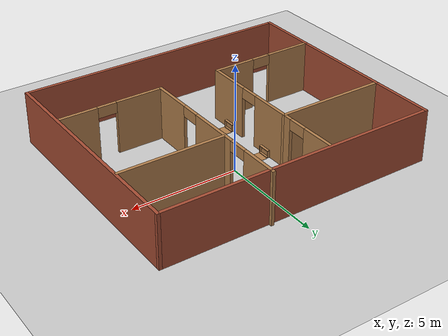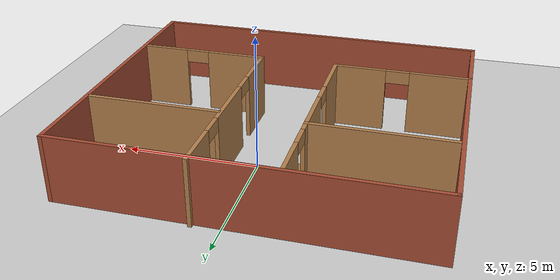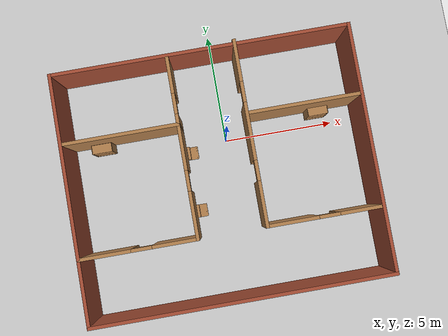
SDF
<sdf version="1.7">
 <world name="default">
  <light name="sun" type="directional">
   <pose>0 0 10 0 -0 0</pose>
   <diffuse>0.8 0.8 0.8 1</diffuse>
   <specular>0.2 0.2 0.2 1</specular>
   <attenuation>
    <range>1000</range>
    <constant>0.9</constant>
    <linear>0.01</linear>
    <quadratic>0.001</quadratic>
   </attenuation>
   <direction>-0.5 0.1 -0.9</direction>
   <spot><inner_angle>0</inner_angle><outer_angle>0</outer_angle><falloff>0</falloff></spot>
  </light>
  <model name="ground_plane">
   <static>1</static>
   <link name="link">
    <collision name="collision">
     <geometry><plane><normal>0 0 1</normal><size>100 100</size></plane></geometry>
     <surface><friction><ode><mu>100</mu><mu2>50</mu2></ode></friction></surface>
    </collision>
    <visual name="visual">
     <cast_shadows>0</cast_shadows>
     <geometry><plane><normal>0 0 1</normal><size>100 100</size></plane></geometry>
     <material>
      <script><uri>file://media/materials/scripts/gazebo.material</uri><name>Gazebo/Grey</name></script>
     </material>
    </visual>
   </link>
  </model>
  <gravity>0 0 -9.8</gravity>
  <magnetic_field>6e-06 2.3e-05 -4.2e-05</magnetic_field>
  <atmosphere type="adiabatic"/>
  <physics type="ode">
   <max_step_size>0.001</max_step_size>
   <real_time_factor>1</real_time_factor>
   <real_time_update_rate>1000</real_time_update_rate>
  </physics>
  <scene><ambient>0.4 0.4 0.4 1</ambient><background>0.7 0.7 0.7 1</background><shadows>1</shadows></scene>
  <audio><device>default</device></audio>
  <spherical_coordinates>
   <surface_model>EARTH_WGS84</surface_model>
   <latitude_deg>0</latitude_deg>
   <longitude_deg>0</longitude_deg>
   <elevation>0</elevation>
   <heading_deg>0</heading_deg>
  </spherical_coordinates>
  <model name="my_floor">
   <pose>-0.502661 -1.52839 0 0 -0 0</pose>
   <link name="Wall_0">
    <collision name="Wall_0_Collision">
     <geometry><box><size>11 0.15 2.5</size></box></geometry>
     <pose>0 0 1.25 0 -0 0</pose>
    </collision>
    <visual name="Wall_0_Visual">
     <pose>0 0 1.25 0 -0 0</pose>
     <geometry><box><size>11 0.15 2.5</size></box></geometry>
     <material>
      <script><uri>file://media/materials/scripts/gazebo.material</uri><name>Gazebo/Bricks</name></script>
      <ambient>1 1 1 1</ambient>
     </material>
     <meta><layer>0</layer></meta>
    </visual>
    <pose>-6.55 -0.065875 0 0 -0 -1.5708</pose>
   </link>
   <link name="Wall_1">
    <collision name="Wall_1_Collision">
     <geometry><box><size>13.25 0.15 2.5</size></box></geometry>
     <pose>0 0 1.25 0 -0 0</pose>
    </collision>
    <visual name="Wall_1_Visual">
     <pose>0 0 1.25 0 -0 0</pose>
     <geometry><box><size>13.25 0.15 2.5</size></box></geometry>
     <material>
      <script><uri>file://media/materials/scripts/gazebo.material</uri><name>Gazebo/Bricks</name></script>
      <ambient>1 1 1 1</ambient>
     </material>
     <meta><layer>0</layer></meta>
    </visual>
    <pose>-0 -5.49087 0 0 -0 0</pose>
   </link>
   <link name="Wall_15">
    <pose>-3.9966 -2.62219 0 0 -0 0</pose>
    <visual name="Wall_15_Visual_0">
     <pose>-1.46919 0 1.25 0 -0 0</pose>
     <geometry><box><size>2.31162 0.15 2.5</size></box></geometry>
     <material>
      <script><uri>file://media/materials/scripts/gazebo.material</uri><name>Gazebo/Wood</name></script>
      <ambient>1 1 1 1</ambient>
     </material>
     <meta><layer>0</layer></meta>
    </visual>
    <collision name="Wall_15_Collision_0">
     <geometry><box><size>2.31162 0.15 2.5</size></box></geometry>
     <pose>-1.46919 0 1.25 0 -0 0</pose>
    </collision>
    <visual name="Wall_15_Visual_1">
     <pose>1.60581 0 1.25 0 -0 0</pose>
     <geometry><box><size>2.03838 0.15 2.5</size></box></geometry>
     <material>
      <script><uri>file://media/materials/scripts/gazebo.material</uri><name>Gazebo/Wood</name></script>
      <ambient>1 1 1 1</ambient>
     </material>
     <meta><layer>0</layer></meta>
    </visual>
    <collision name="Wall_15_Collision_1">
     <geometry><box><size>2.03838 0.15 2.5</size></box></geometry>
     <pose>1.60581 0 1.25 0 -0 0</pose>
    </collision>
    <visual name="Wall_15_Visual_2">
     <pose>0.13662 0 2.25 0 -0 0</pose>
     <geometry><box><size>0.9 0.15 0.5</size></box></geometry>
     <material>
      <script><uri>file://media/materials/scripts/gazebo.material</uri><name>Gazebo/Wood</name></script>
      <ambient>1 1 1 1</ambient>
     </material>
     <meta><layer>0</layer></meta>
    </visual>
    <collision name="Wall_15_Collision_2">
     <geometry><box><size>0.9 0.15 0.5</size></box></geometry>
     <pose>0.13662 0 2.25 0 -0 0</pose>
    </collision>
   </link>
   <link name="Wall_16">
    <pose>-1.4466 1.30281 0 0 -0 1.5708</pose>
    <visual name="Wall_16_Visual_0">
     <pose>-2.93729 0 1.25 0 -0 0</pose>
     <geometry><box><size>2.12542 0.15 2.5</size></box></geometry>
     <material>
      <script><uri>file://media/materials/scripts/gazebo.material</uri><name>Gazebo/Wood</name></script>
      <ambient>1 1 1 1</ambient>
     </material>
     <meta><layer>0</layer></meta>
    </visual>
    <collision name="Wall_16_Collision_0">
     <geometry><box><size>2.12542 0.15 2.5</size></box></geometry>
     <pose>-2.93729 0 1.25 0 -0 0</pose>
    </collision>
    <visual name="Wall_16_Visual_1">
     <pose>0.251231 0 1.25 0 -0 0</pose>
     <geometry><box><size>2.45162 0.15 2.5</size></box></geometry>
     <material>
      <script><uri>file://media/materials/scripts/gazebo.material</uri><name>Gazebo/Wood</name></script>
      <ambient>1 1 1 1</ambient>
     </material>
     <meta><layer>0</layer></meta>
    </visual>
    <collision name="Wall_16_Collision_1">
     <geometry><box><size>2.45162 0.15 2.5</size></box></geometry>
     <pose>0.251231 0 1.25 0 -0 0</pose>
    </collision>
    <visual name="Wall_16_Visual_2">
     <pose>3.18852 0 1.25 0 -0 0</pose>
     <geometry><box><size>1.62296 0.15 2.5</size></box></geometry>
     <material>
      <script><uri>file://media/materials/scripts/gazebo.material</uri><name>Gazebo/Wood</name></script>
      <ambient>1 1 1 1</ambient>
     </material>
     <meta><layer>0</layer></meta>
    </visual>
    <collision name="Wall_16_Collision_2">
     <geometry><box><size>1.62296 0.15 2.5</size></box></geometry>
     <pose>3.18852 0 1.25 0 -0 0</pose>
    </collision>
    <visual name="Wall_16_Visual_3">
     <pose>-1.42458 0 2.25 0 -0 0</pose>
     <geometry><box><size>0.9 0.15 0.5</size></box></geometry>
     <material>
      <script><uri>file://media/materials/scripts/gazebo.material</uri><name>Gazebo/Wood</name></script>
      <ambient>1 1 1 1</ambient>
     </material>
     <meta><layer>0</layer></meta>
    </visual>
    <collision name="Wall_16_Collision_3">
     <geometry><box><size>0.9 0.15 0.5</size></box></geometry>
     <pose>-1.42458 0 2.25 0 -0 0</pose>
    </collision>
    <visual name="Wall_16_Visual_4">
     <pose>1.92704 0 2.25 0 -0 0</pose>
     <geometry><box><size>0.9 0.15 0.5</size></box></geometry>
     <material>
      <script><uri>file://media/materials/scripts/gazebo.material</uri><name>Gazebo/Wood</name></script>
      <ambient>1 1 1 1</ambient>
     </material>
     <meta><layer>0</layer></meta>
    </visual>
    <collision name="Wall_16_Collision_4">
     <geometry><box><size>0.9 0.15 0.5</size></box></geometry>
     <pose>1.92704 0 2.25 0 -0 0</pose>
    </collision>
   </link>
   <link name="Wall_18">
    <collision name="Wall_18_Collision">
     <geometry><box><size>5.25 0.15 2.5</size></box></geometry>
     <pose>0 0 1.25 0 -0 0</pose>
    </collision>
    <visual name="Wall_18_Visual">
     <pose>0 0 1.25 0 -0 0</pose>
     <geometry><box><size>5.25 0.15 2.5</size></box></geometry>
     <material>
      <script><uri>file://media/materials/scripts/gazebo.material</uri><name>Gazebo/Wood</name></script>
      <ambient>1 1 1 1</ambient>
     </material>
     <meta><layer>0</layer></meta>
    </visual>
    <pose>-3.9966 2.32545 0 0 -0 0</pose>
   </link>
   <link name="Wall_2">
    <collision name="Wall_2_Collision">
     <geometry><box><size>11 0.15 2.5</size></box></geometry>
     <pose>0 0 1.25 0 -0 0</pose>
    </collision>
    <visual name="Wall_2_Visual">
     <pose>0 0 1.25 0 -0 0</pose>
     <geometry><box><size>11 0.15 2.5</size></box></geometry>
     <material>
      <script><uri>file://media/materials/scripts/gazebo.material</uri><name>Gazebo/Bricks</name></script>
      <ambient>1 1 1 1</ambient>
     </material>
     <meta><layer>0</layer></meta>
    </visual>
    <pose>6.55 -0.065875 0 0 -0 1.5708</pose>
   </link>
   <link name="Wall_22">
    <pose>1.53986 1.44087 0 0 -0 -1.5708</pose>
    <visual name="Wall_22_Visual_0">
     <pose>-3.18199 0 1.25 0 -0 0</pose>
     <geometry><box><size>1.88602 0.15 2.5</size></box></geometry>
     <material>
      <script><uri>file://media/materials/scripts/gazebo.material</uri><name>Gazebo/Wood</name></script>
      <ambient>1 1 1 1</ambient>
     </material>
     <meta><layer>0</layer></meta>
    </visual>
    <collision name="Wall_22_Collision_0">
     <geometry><box><size>1.88602 0.15 2.5</size></box></geometry>
     <pose>-3.18199 0 1.25 0 -0 0</pose>
    </collision>
    <visual name="Wall_22_Visual_1">
     <pose>-0.07327 0 1.25 0 -0 0</pose>
     <geometry><box><size>2.53143 0.15 2.5</size></box></geometry>
     <material>
      <script><uri>file://media/materials/scripts/gazebo.material</uri><name>Gazebo/Wood</name></script>
      <ambient>1 1 1 1</ambient>
     </material>
     <meta><layer>0</layer></meta>
    </visual>
    <collision name="Wall_22_Collision_1">
     <geometry><box><size>2.53143 0.15 2.5</size></box></geometry>
     <pose>-0.07327 0 1.25 0 -0 0</pose>
    </collision>
    <visual name="Wall_22_Visual_2">
     <pose>3.10872 0 1.25 0 -0 0</pose>
     <geometry><box><size>2.03256 0.15 2.5</size></box></geometry>
     <material>
      <script><uri>file://media/materials/scripts/gazebo.material</uri><name>Gazebo/Wood</name></script>
      <ambient>1 1 1 1</ambient>
     </material>
     <meta><layer>0</layer></meta>
    </visual>
    <collision name="Wall_22_Collision_2">
     <geometry><box><size>2.03256 0.15 2.5</size></box></geometry>
     <pose>3.10872 0 1.25 0 -0 0</pose>
    </collision>
    <visual name="Wall_22_Visual_3">
     <pose>-1.78898 0 2.25 0 -0 0</pose>
     <geometry><box><size>0.9 0.15 0.5</size></box></geometry>
     <material>
      <script><uri>file://media/materials/scripts/gazebo.material</uri><name>Gazebo/Wood</name></script>
      <ambient>1 1 1 1</ambient>
     </material>
     <meta><layer>0</layer></meta>
    </visual>
    <collision name="Wall_22_Collision_3">
     <geometry><box><size>0.9 0.15 0.5</size></box></geometry>
     <pose>-1.78898 0 2.25 0 -0 0</pose>
    </collision>
    <visual name="Wall_22_Visual_4">
     <pose>1.64244 0 2.25 0 -0 0</pose>
     <geometry><box><size>0.9 0.15 0.5</size></box></geometry>
     <material>
      <script><uri>file://media/materials/scripts/gazebo.material</uri><name>Gazebo/Wood</name></script>
      <ambient>1 1 1 1</ambient>
     </material>
     <meta><layer>0</layer></meta>
    </visual>
    <collision name="Wall_22_Collision_4">
     <geometry><box><size>0.9 0.15 0.5</size></box></geometry>
     <pose>1.64244 0 2.25 0 -0 0</pose>
    </collision>
   </link>
   <link name="Wall_23">
    <pose>3.96486 -2.60913 0 0 -0 0</pose>
    <visual name="Wall_23_Visual_0">
     <pose>-1.34419 0 1.25 0 -0 0</pose>
     <geometry><box><size>2.31162 0.15 2.5</size></box></geometry>
     <material>
      <script><uri>file://media/materials/scripts/gazebo.material</uri><name>Gazebo/Wood</name></script>
      <ambient>1 1 1 1</ambient>
     </material>
     <meta><layer>0</layer></meta>
    </visual>
    <collision name="Wall_23_Collision_0">
     <geometry><box><size>2.31162 0.15 2.5</size></box></geometry>
     <pose>-1.34419 0 1.25 0 -0 0</pose>
    </collision>
    <visual name="Wall_23_Visual_1">
     <pose>1.60581 0 1.25 0 -0 0</pose>
     <geometry><box><size>1.78838 0.15 2.5</size></box></geometry>
     <material>
      <script><uri>file://media/materials/scripts/gazebo.material</uri><name>Gazebo/Wood</name></script>
      <ambient>1 1 1 1</ambient>
     </material>
     <meta><layer>0</layer></meta>
    </visual>
    <collision name="Wall_23_Collision_1">
     <geometry><box><size>1.78838 0.15 2.5</size></box></geometry>
     <pose>1.60581 0 1.25 0 -0 0</pose>
    </collision>
    <visual name="Wall_23_Visual_2">
     <pose>0.26162 0 2.25 0 -0 0</pose>
     <geometry><box><size>0.9 0.15 0.5</size></box></geometry>
     <material>
      <script><uri>file://media/materials/scripts/gazebo.material</uri><name>Gazebo/Wood</name></script>
      <ambient>1 1 1 1</ambient>
     </material>
     <meta><layer>0</layer></meta>
    </visual>
    <collision name="Wall_23_Collision_2">
     <geometry><box><size>0.9 0.15 0.5</size></box></geometry>
     <pose>0.26162 0 2.25 0 -0 0</pose>
    </collision>
   </link>
   <link name="Wall_25">
    <collision name="Wall_25_Collision">
     <geometry><box><size>5 0.15 2.5</size></box></geometry>
     <pose>0 0 1.25 0 -0 0</pose>
    </collision>
    <visual name="Wall_25_Visual">
     <pose>0 0 1.25 0 -0 0</pose>
     <geometry><box><size>5 0.15 2.5</size></box></geometry>
     <material>
      <script><uri>file://media/materials/scripts/gazebo.material</uri><name>Gazebo/Wood</name></script>
      <ambient>1 1 1 1</ambient>
     </material>
     <meta><layer>0</layer></meta>
    </visual>
    <pose>4.04466 2.29885 0 0 -0 0</pose>
   </link>
   <link name="Wall_3">
    <collision name="Wall_3_Collision">
     <geometry><box><size>13.25 0.15 2.5</size></box></geometry>
     <pose>0 0 1.25 0 -0 0</pose>
    </collision>
    <visual name="Wall_3_Visual">
     <pose>0 0 1.25 0 -0 0</pose>
     <geometry><box><size>13.25 0.15 2.5</size></box></geometry>
     <material>
      <script><uri>file://media/materials/scripts/gazebo.material</uri><name>Gazebo/Bricks</name></script>
      <ambient>1 1 1 1</ambient>
     </material>
     <meta><layer>0</layer></meta>
    </visual>
    <pose>-0 5.35912 0 0 -0 3.14159</pose>
   </link>
   <static>1</static>
  </model>
  <model name="bookshelf">
   <static>1</static>
   <link name="link">
    <inertial><mass>1</mass></inertial>
    <collision name="back">
     <pose>0 0.005 0.6 0 -0 0</pose>
     <geometry><box><size>0.9 0.01 1.2</size></box></geometry>
    </collision>
    <visual name="visual1">
     <pose>0 0.005 0.6 0 -0 0</pose>
     <geometry><box><size>0.9 0.01 1.2</size></box></geometry>
     <material>
      <script><uri>file://media/materials/scripts/gazebo.material</uri><name>Gazebo/Wood</name></script>
     </material>
    </visual>
    <collision name="left_side">
     <pose>0.45 -0.195 0.6 0 -0 0</pose>
     <geometry><box><size>0.02 0.4 1.2</size></box></geometry>
    </collision>
    <visual name="visual2">
     <pose>0.45 -0.195 0.6 0 -0 0</pose>
     <geometry><box><size>0.02 0.4 1.2</size></box></geometry>
     <material>
      <script><uri>file://media/materials/scripts/gazebo.material</uri><name>Gazebo/Wood</name></script>
     </material>
    </visual>
    <collision name="right_side">
     <pose>-0.45 -0.195 0.6 0 -0 0</pose>
     <geometry><box><size>0.02 0.4 1.2</size></box></geometry>
    </collision>
    <visual name="visual3">
     <pose>-0.45 -0.195 0.6 0 -0 0</pose>
     <geometry><box><size>0.02 0.4 1.2</size></box></geometry>
     <material>
      <script><uri>file://media/materials/scripts/gazebo.material</uri><name>Gazebo/Wood</name></script>
     </material>
    </visual>
    <collision name="bottom">
     <pose>0 -0.195 0.03 0 -0 0</pose>
     <geometry><box><size>0.88 0.4 0.06</size></box></geometry>
    </collision>
    <visual name="visual4">
     <pose>0 -0.195 0.03 0 -0 0</pose>
     <geometry><box><size>0.88 0.4 0.06</size></box></geometry>
     <material>
      <script><uri>file://media/materials/scripts/gazebo.material</uri><name>Gazebo/Wood</name></script>
     </material>
    </visual>
    <collision name="top">
     <pose>0 -0.195 1.19 0 -0 0</pose>
     <geometry><box><size>0.88 0.4 0.02</size></box></geometry>
    </collision>
    <visual name="visual5">
     <pose>0 -0.195 1.19 0 -0 0</pose>
     <geometry><box><size>0.88 0.4 0.02</size></box></geometry>
     <material>
      <script><uri>file://media/materials/scripts/gazebo.material</uri><name>Gazebo/Wood</name></script>
     </material>
    </visual>
    <collision name="low_shelf">
     <pose>0 -0.195 0.43 0 -0 0</pose>
     <geometry><box><size>0.88 0.4 0.02</size></box></geometry>
    </collision>
    <visual name="visual6">
     <pose>0 -0.195 0.43 0 -0 0</pose>
     <geometry><box><size>0.88 0.4 0.02</size></box></geometry>
     <material>
      <script><uri>file://media/materials/scripts/gazebo.material</uri><name>Gazebo/Wood</name></script>
     </material>
    </visual>
    <collision name="high_shelf">
     <pose>0 -0.195 0.8 0 -0 0</pose>
     <geometry><box><size>0.88 0.4 0.02</size></box></geometry>
    </collision>
    <visual name="visual7">
     <pose>0 -0.195 0.8 0 -0 0</pose>
     <geometry><box><size>0.88 0.4 0.02</size></box></geometry>
     <material>
      <script><uri>file://media/materials/scripts/gazebo.material</uri><name>Gazebo/Wood</name></script>
     </material>
    </visual>
   </link>
   <pose>4.28312 0.725131 0 0 -0 0</pose>
  </model>
  <model name="bookshelf_0">
   <static>1</static>
   <link name="link">
    <inertial><mass>1</mass></inertial>
    <collision name="back">
     <pose>0 0.005 0.6 0 -0 0</pose>
     <geometry><box><size>0.9 0.01 1.2</size></box></geometry>
    </collision>
    <visual name="visual1">
     <pose>0 0.005 0.6 0 -0 0</pose>
     <geometry><box><size>0.9 0.01 1.2</size></box></geometry>
     <material>
      <script><uri>file://media/materials/scripts/gazebo.material</uri><name>Gazebo/Wood</name></script>
     </material>
    </visual>
    <collision name="left_side">
     <pose>0.45 -0.195 0.6 0 -0 0</pose>
     <geometry><box><size>0.02 0.4 1.2</size></box></geometry>
    </collision>
    <visual name="visual2">
     <pose>0.45 -0.195 0.6 0 -0 0</pose>
     <geometry><box><size>0.02 0.4 1.2</size></box></geometry>
     <material>
      <script><uri>file://media/materials/scripts/gazebo.material</uri><name>Gazebo/Wood</name></script>
     </material>
    </visual>
    <collision name="right_side">
     <pose>-0.45 -0.195 0.6 0 -0 0</pose>
     <geometry><box><size>0.02 0.4 1.2</size></box></geometry>
    </collision>
    <visual name="visual3">
     <pose>-0.45 -0.195 0.6 0 -0 0</pose>
     <geometry><box><size>0.02 0.4 1.2</size></box></geometry>
     <material>
      <script><uri>file://media/materials/scripts/gazebo.material</uri><name>Gazebo/Wood</name></script>
     </material>
    </visual>
    <collision name="bottom">
     <pose>0 -0.195 0.03 0 -0 0</pose>
     <geometry><box><size>0.88 0.4 0.06</size></box></geometry>
    </collision>
    <visual name="visual4">
     <pose>0 -0.195 0.03 0 -0 0</pose>
     <geometry><box><size>0.88 0.4 0.06</size></box></geometry>
     <material>
      <script><uri>file://media/materials/scripts/gazebo.material</uri><name>Gazebo/Wood</name></script>
     </material>
    </visual>
    <collision name="top">
     <pose>0 -0.195 1.19 0 -0 0</pose>
     <geometry><box><size>0.88 0.4 0.02</size></box></geometry>
    </collision>
    <visual name="visual5">
     <pose>0 -0.195 1.19 0 -0 0</pose>
     <geometry><box><size>0.88 0.4 0.02</size></box></geometry>
     <material>
      <script><uri>file://media/materials/scripts/gazebo.material</uri><name>Gazebo/Wood</name></script>
     </material>
    </visual>
    <collision name="low_shelf">
     <pose>0 -0.195 0.43 0 -0 0</pose>
     <geometry><box><size>0.88 0.4 0.02</size></box></geometry>
    </collision>
    <visual name="visual6">
     <pose>0 -0.195 0.43 0 -0 0</pose>
     <geometry><box><size>0.88 0.4 0.02</size></box></geometry>
     <material>
      <script><uri>file://media/materials/scripts/gazebo.material</uri><name>Gazebo/Wood</name></script>
     </material>
    </visual>
    <collision name="high_shelf">
     <pose>0 -0.195 0.8 0 -0 0</pose>
     <geometry><box><size>0.88 0.4 0.02</size></box></geometry>
    </collision>
    <visual name="visual7">
     <pose>0 -0.195 0.8 0 -0 0</pose>
     <geometry><box><size>0.88 0.4 0.02</size></box></geometry>
     <material>
      <script><uri>file://media/materials/scripts/gazebo.material</uri><name>Gazebo/Wood</name></script>
     </material>
    </visual>
   </link>
   <pose>-5.57249 0.7058 0 0 -0 0</pose>
  </model>
  <model name="wooden_case">
   <link name="base">
    <pose>0 0 0.024 0 -0 0</pose>
    <inertial>
     <pose>-0.022184 0 0.171592 0 -0 0</pose>
     <mass>3.96264</mass>
     <inertia>
      <ixx>0.213536</ixx>
      <ixy>0</ixy>
      <ixz>0.000779377</ixz>
      <iyy>0.0708943</iyy>
      <iyz>0</iyz>
      <izz>0.154604</izz>
     </inertia>
    </inertial>
    <collision name="collision_back">
     <pose>-0.053975 0 0.1778 0 -0 0</pose>
     <geometry><box><size>0.01905 0.5461 0.3175</size></box></geometry>
     <surface>
      <contact>
       <poissons_ratio>0.347</poissons_ratio>
       <elastic_modulus>8.8e+09</elastic_modulus>
       <ode><kp>100000</kp><kd>100</kd><max_vel>100</max_vel><min_depth>0.001</min_depth></ode>
      </contact>
      <friction>
       <torsional>
        <coefficient>1</coefficient>
        <use_patch_radius>0</use_patch_radius>
        <surface_radius>0.01</surface_radius>
       </torsional>
      </friction>
     </surface>
    </collision>
    <visual name="visual_back">
     <pose>-0.053975 0 0.1778 0 -0 0</pose>
     <geometry><box><size>0.01905 0.5461 0.3175</size></box></geometry>
     <material>
      <script><uri>file://media/materials/scripts/gazebo.material</uri><name>Gazebo/Wood</name></script>
     </material>
    </visual>
    <collision name="collision_bottom">
     <pose>0 0 0.009525 0 -0 0</pose>
     <geometry><box><size>0.127 0.5842 0.01905</size></box></geometry>
     <surface>
      <contact>
       <poissons_ratio>0.347</poissons_ratio>
       <elastic_modulus>8.8e+09</elastic_modulus>
       <ode><kp>100000</kp><kd>100</kd><max_vel>100</max_vel><min_depth>0.001</min_depth></ode>
      </contact>
      <friction>
       <torsional>
        <coefficient>1</coefficient>
        <use_patch_radius>0</use_patch_radius>
        <surface_radius>0.01</surface_radius>
       </torsional>
      </friction>
     </surface>
    </collision>
    <visual name="visual_bottom">
     <pose>0 0 0.009525 0 -0 0</pose>
     <geometry><box><size>0.127 0.5842 0.01905</size></box></geometry>
     <material>
      <script><uri>file://media/materials/scripts/gazebo.material</uri><name>Gazebo/Wood</name></script>
     </material>
    </visual>
    <collision name="collision_top">
     <pose>0 0 0.346075 0 -0 0</pose>
     <geometry><box><size>0.127 0.5842 0.01905</size></box></geometry>
     <surface>
      <contact>
       <poissons_ratio>0.347</poissons_ratio>
       <elastic_modulus>8.8e+09</elastic_modulus>
       <ode><kp>100000</kp><kd>100</kd><max_vel>100</max_vel><min_depth>0.001</min_depth></ode>
      </contact>
      <friction>
       <torsional>
        <coefficient>1</coefficient>
        <use_patch_radius>0</use_patch_radius>
        <surface_radius>0.01</surface_radius>
       </torsional>
      </friction>
     </surface>
    </collision>
    <visual name="visual_top">
     <pose>0 0 0.346075 0 -0 0</pose>
     <geometry><box><size>0.127 0.5842 0.01905</size></box></geometry>
     <material>
      <script><uri>file://media/materials/scripts/gazebo.material</uri><name>Gazebo/Wood</name></script>
     </material>
    </visual>
    <collision name="collision_left">
     <pose>0 -0.282575 0.1778 0 -0 0</pose>
     <geometry><box><size>0.127 0.01905 0.3175</size></box></geometry>
     <surface>
      <contact>
       <poissons_ratio>0.347</poissons_ratio>
       <elastic_modulus>8.8e+09</elastic_modulus>
       <ode><kp>100000</kp><kd>100</kd><max_vel>100</max_vel><min_depth>0.001</min_depth></ode>
      </contact>
      <friction>
       <torsional>
        <coefficient>1</coefficient>
        <use_patch_radius>0</use_patch_radius>
        <surface_radius>0.01</surface_radius>
       </torsional>
      </friction>
     </surface>
    </collision>
    <visual name="visual_left">
     <pose>0 -0.282575 0.1778 0 -0 0</pose>
     <geometry><box><size>0.127 0.01905 0.3175</size></box></geometry>
     <material>
      <script><uri>file://media/materials/scripts/gazebo.material</uri><name>Gazebo/Wood</name></script>
     </material>
    </visual>
    <collision name="collision_right">
     <pose>0 0.282575 0.1778 0 -0 0</pose>
     <geometry><box><size>0.127 0.01905 0.3175</size></box></geometry>
     <surface>
      <contact>
       <poissons_ratio>0.347</poissons_ratio>
       <elastic_modulus>8.8e+09</elastic_modulus>
       <ode><kp>100000</kp><kd>100</kd><max_vel>100</max_vel><min_depth>0.001</min_depth></ode>
      </contact>
      <friction>
       <torsional>
        <coefficient>1</coefficient>
        <use_patch_radius>0</use_patch_radius>
        <surface_radius>0.01</surface_radius>
       </torsional>
      </friction>
     </surface>
    </collision>
    <visual name="visual_right">
     <pose>0 0.282575 0.1778 0 -0 0</pose>
     <geometry><box><size>0.127 0.01905 0.3175</size></box></geometry>
     <material>
      <script><uri>file://media/materials/scripts/gazebo.material</uri><name>Gazebo/Wood</name></script>
     </material>
    </visual>
    <collision name="collision_block_left">
     <pose>0.0095 -0.2151 -0.012 0 -0 0</pose>
     <geometry><box><size>0.108 0.05 0.024</size></box></geometry>
     <surface>
      <contact>
       <poissons_ratio>0.347</poissons_ratio>
       <elastic_modulus>8.8e+09</elastic_modulus>
       <ode><kp>100000</kp><kd>100</kd><max_vel>100</max_vel><min_depth>0.001</min_depth></ode>
      </contact>
      <friction>
       <torsional>
        <coefficient>1</coefficient>
        <use_patch_radius>0</use_patch_radius>
        <surface_radius>0.01</surface_radius>
       </torsional>
      </friction>
     </surface>
    </collision>
    <visual name="visual_block_left">
     <pose>0.0095 -0.2151 -0.012 0 -0 0</pose>
     <geometry><box><size>0.108 0.05 0.024</size></box></geometry>
     <material>
      <script><uri>file://media/materials/scripts/gazebo.material</uri><name>Gazebo/Wood</name></script>
     </material>
    </visual>
    <collision name="collision_block_right">
     <pose>0.0095 0.2151 -0.012 0 -0 0</pose>
     <geometry><box><size>0.108 0.05 0.024</size></box></geometry>
     <surface>
      <contact>
       <poissons_ratio>0.347</poissons_ratio>
       <elastic_modulus>8.8e+09</elastic_modulus>
       <ode><kp>100000</kp><kd>100</kd><max_vel>100</max_vel><min_depth>0.001</min_depth></ode>
      </contact>
      <friction>
       <torsional>
        <coefficient>1</coefficient>
        <use_patch_radius>0</use_patch_radius>
        <surface_radius>0.01</surface_radius>
       </torsional>
      </friction>
     </surface>
    </collision>
    <visual name="visual_block_right">
     <pose>0.0095 0.2151 -0.012 0 -0 0</pose>
     <geometry><box><size>0.108 0.05 0.024</size></box></geometry>
     <material>
      <script><uri>file://media/materials/scripts/gazebo.material</uri><name>Gazebo/Wood</name></script>
     </material>
    </visual>
   </link>
   <link name="lid">
    <pose>0.243775 0 0.009525 0 -0 0</pose>
    <inertial>
     <mass>1.97874</mass>
     <inertia>
      <ixx>0.0563367</ixx>
      <ixy>0</ixy>
      <ixz>0</ixz>
      <iyy>0.020911</iyy>
      <iyz>0</iyz>
      <izz>0.0771281</izz>
     </inertia>
    </inertial>
    <collision name="collision">
     <geometry><box><size>0.3556 0.5842 0.01905</size></box></geometry>
     <surface>
      <contact>
       <poissons_ratio>0.347</poissons_ratio>
       <elastic_modulus>8.8e+09</elastic_modulus>
       <ode><kp>100000</kp><kd>100</kd><max_vel>100</max_vel><min_depth>0.001</min_depth></ode>
      </contact>
      <friction>
       <torsional>
        <coefficient>1</coefficient>
        <use_patch_radius>0</use_patch_radius>
        <surface_radius>0.01</surface_radius>
       </torsional>
      </friction>
     </surface>
    </collision>
    <visual name="visual">
     <geometry><box><size>0.3556 0.5842 0.01905</size></box></geometry>
     <material>
      <script><uri>file://media/materials/scripts/gazebo.material</uri><name>Gazebo/Wood</name></script>
     </material>
    </visual>
    <visual name="tee_nut_1">
     <pose>0.122 -0.216 0 0 -0 0</pose>
     <geometry><cylinder><radius>0.00635</radius><length>0.0192405</length></cylinder></geometry>
     <material>
      <script><uri>file://media/materials/scripts/gazebo.material</uri><name>Gazebo/Grey</name></script>
     </material>
    </visual>
    <visual name="tee_nut_2">
     <pose>0.122 -0.088 0 0 -0 0</pose>
     <geometry><cylinder><radius>0.00635</radius><length>0.0192405</length></cylinder></geometry>
     <material>
      <script><uri>file://media/materials/scripts/gazebo.material</uri><name>Gazebo/Grey</name></script>
     </material>
    </visual>
    <visual name="tee_nut_3">
     <pose>0.122 0.088 0 0 -0 0</pose>
     <geometry><cylinder><radius>0.00635</radius><length>0.0192405</length></cylinder></geometry>
     <material>
      <script><uri>file://media/materials/scripts/gazebo.material</uri><name>Gazebo/Grey</name></script>
     </material>
    </visual>
    <visual name="tee_nut_4">
     <pose>0.122 0.216 0 0 -0 0</pose>
     <geometry><cylinder><radius>0.00635</radius><length>0.0192405</length></cylinder></geometry>
     <material>
      <script><uri>file://media/materials/scripts/gazebo.material</uri><name>Gazebo/Grey</name></script>
     </material>
    </visual>
   </link>
   <joint name="lid_hinge" type="revolute">
    <pose>-0.1778 0 0.01905 0 -0 0</pose>
    <parent>base</parent>
    <child>lid</child>
    <axis>
     <xyz>0 1 0</xyz>
     <limit><upper>0.523599</upper><lower>-1.5708</lower></limit>
     <dynamics><spring_reference>0</spring_reference><spring_stiffness>0</spring_stiffness></dynamics>
    </axis>
   </joint>
   <pose>-1.78702 -0.303801 -0.001057 0 -0.000429 0</pose>
  </model>
  <model name="wooden_case_0">
   <link name="base">
    <pose>0 0 0.024 0 -0 0</pose>
    <inertial>
     <pose>-0.022184 0 0.171592 0 -0 0</pose>
     <mass>3.96264</mass>
     <inertia>
      <ixx>0.213536</ixx>
      <ixy>0</ixy>
      <ixz>0.000779377</ixz>
      <iyy>0.0708943</iyy>
      <iyz>0</iyz>
      <izz>0.154604</izz>
     </inertia>
    </inertial>
    <collision name="collision_back">
     <pose>-0.053975 0 0.1778 0 -0 0</pose>
     <geometry><box><size>0.01905 0.5461 0.3175</size></box></geometry>
     <surface>
      <contact>
       <poissons_ratio>0.347</poissons_ratio>
       <elastic_modulus>8.8e+09</elastic_modulus>
       <ode><kp>100000</kp><kd>100</kd><max_vel>100</max_vel><min_depth>0.001</min_depth></ode>
      </contact>
      <friction>
       <torsional>
        <coefficient>1</coefficient>
        <use_patch_radius>0</use_patch_radius>
        <surface_radius>0.01</surface_radius>
       </torsional>
      </friction>
     </surface>
    </collision>
    <visual name="visual_back">
     <pose>-0.053975 0 0.1778 0 -0 0</pose>
     <geometry><box><size>0.01905 0.5461 0.3175</size></box></geometry>
     <material>
      <script><uri>file://media/materials/scripts/gazebo.material</uri><name>Gazebo/Wood</name></script>
     </material>
    </visual>
    <collision name="collision_bottom">
     <pose>0 0 0.009525 0 -0 0</pose>
     <geometry><box><size>0.127 0.5842 0.01905</size></box></geometry>
     <surface>
      <contact>
       <poissons_ratio>0.347</poissons_ratio>
       <elastic_modulus>8.8e+09</elastic_modulus>
       <ode><kp>100000</kp><kd>100</kd><max_vel>100</max_vel><min_depth>0.001</min_depth></ode>
      </contact>
      <friction>
       <torsional>
        <coefficient>1</coefficient>
        <use_patch_radius>0</use_patch_radius>
        <surface_radius>0.01</surface_radius>
       </torsional>
      </friction>
     </surface>
    </collision>
    <visual name="visual_bottom">
     <pose>0 0 0.009525 0 -0 0</pose>
     <geometry><box><size>0.127 0.5842 0.01905</size></box></geometry>
     <material>
      <script><uri>file://media/materials/scripts/gazebo.material</uri><name>Gazebo/Wood</name></script>
     </material>
    </visual>
    <collision name="collision_top">
     <pose>0 0 0.346075 0 -0 0</pose>
     <geometry><box><size>0.127 0.5842 0.01905</size></box></geometry>
     <surface>
      <contact>
       <poissons_ratio>0.347</poissons_ratio>
       <elastic_modulus>8.8e+09</elastic_modulus>
       <ode><kp>100000</kp><kd>100</kd><max_vel>100</max_vel><min_depth>0.001</min_depth></ode>
      </contact>
      <friction>
       <torsional>
        <coefficient>1</coefficient>
        <use_patch_radius>0</use_patch_radius>
        <surface_radius>0.01</surface_radius>
       </torsional>
      </friction>
     </surface>
    </collision>
    <visual name="visual_top">
     <pose>0 0 0.346075 0 -0 0</pose>
     <geometry><box><size>0.127 0.5842 0.01905</size></box></geometry>
     <material>
      <script><uri>file://media/materials/scripts/gazebo.material</uri><name>Gazebo/Wood</name></script>
     </material>
    </visual>
    <collision name="collision_left">
     <pose>0 -0.282575 0.1778 0 -0 0</pose>
     <geometry><box><size>0.127 0.01905 0.3175</size></box></geometry>
     <surface>
      <contact>
       <poissons_ratio>0.347</poissons_ratio>
       <elastic_modulus>8.8e+09</elastic_modulus>
       <ode><kp>100000</kp><kd>100</kd><max_vel>100</max_vel><min_depth>0.001</min_depth></ode>
      </contact>
      <friction>
       <torsional>
        <coefficient>1</coefficient>
        <use_patch_radius>0</use_patch_radius>
        <surface_radius>0.01</surface_radius>
       </torsional>
      </friction>
     </surface>
    </collision>
    <visual name="visual_left">
     <pose>0 -0.282575 0.1778 0 -0 0</pose>
     <geometry><box><size>0.127 0.01905 0.3175</size></box></geometry>
     <material>
      <script><uri>file://media/materials/scripts/gazebo.material</uri><name>Gazebo/Wood</name></script>
     </material>
    </visual>
    <collision name="collision_right">
     <pose>0 0.282575 0.1778 0 -0 0</pose>
     <geometry><box><size>0.127 0.01905 0.3175</size></box></geometry>
     <surface>
      <contact>
       <poissons_ratio>0.347</poissons_ratio>
       <elastic_modulus>8.8e+09</elastic_modulus>
       <ode><kp>100000</kp><kd>100</kd><max_vel>100</max_vel><min_depth>0.001</min_depth></ode>
      </contact>
      <friction>
       <torsional>
        <coefficient>1</coefficient>
        <use_patch_radius>0</use_patch_radius>
        <surface_radius>0.01</surface_radius>
       </torsional>
      </friction>
     </surface>
    </collision>
    <visual name="visual_right">
     <pose>0 0.282575 0.1778 0 -0 0</pose>
     <geometry><box><size>0.127 0.01905 0.3175</size></box></geometry>
     <material>
      <script><uri>file://media/materials/scripts/gazebo.material</uri><name>Gazebo/Wood</name></script>
     </material>
    </visual>
    <collision name="collision_block_left">
     <pose>0.0095 -0.2151 -0.012 0 -0 0</pose>
     <geometry><box><size>0.108 0.05 0.024</size></box></geometry>
     <surface>
      <contact>
       <poissons_ratio>0.347</poissons_ratio>
       <elastic_modulus>8.8e+09</elastic_modulus>
       <ode><kp>100000</kp><kd>100</kd><max_vel>100</max_vel><min_depth>0.001</min_depth></ode>
      </contact>
      <friction>
       <torsional>
        <coefficient>1</coefficient>
        <use_patch_radius>0</use_patch_radius>
        <surface_radius>0.01</surface_radius>
       </torsional>
      </friction>
     </surface>
    </collision>
    <visual name="visual_block_left">
     <pose>0.0095 -0.2151 -0.012 0 -0 0</pose>
     <geometry><box><size>0.108 0.05 0.024</size></box></geometry>
     <material>
      <script><uri>file://media/materials/scripts/gazebo.material</uri><name>Gazebo/Wood</name></script>
     </material>
    </visual>
    <collision name="collision_block_right">
     <pose>0.0095 0.2151 -0.012 0 -0 0</pose>
     <geometry><box><size>0.108 0.05 0.024</size></box></geometry>
     <surface>
      <contact>
       <poissons_ratio>0.347</poissons_ratio>
       <elastic_modulus>8.8e+09</elastic_modulus>
       <ode><kp>100000</kp><kd>100</kd><max_vel>100</max_vel><min_depth>0.001</min_depth></ode>
      </contact>
      <friction>
       <torsional>
        <coefficient>1</coefficient>
        <use_patch_radius>0</use_patch_radius>
        <surface_radius>0.01</surface_radius>
       </torsional>
      </friction>
     </surface>
    </collision>
    <visual name="visual_block_right">
     <pose>0.0095 0.2151 -0.012 0 -0 0</pose>
     <geometry><box><size>0.108 0.05 0.024</size></box></geometry>
     <material>
      <script><uri>file://media/materials/scripts/gazebo.material</uri><name>Gazebo/Wood</name></script>
     </material>
    </visual>
   </link>
   <link name="lid">
    <pose>0.243775 0 0.009525 0 -0 0</pose>
    <inertial>
     <mass>1.97874</mass>
     <inertia>
      <ixx>0.0563367</ixx>
      <ixy>0</ixy>
      <ixz>0</ixz>
      <iyy>0.020911</iyy>
      <iyz>0</iyz>
      <izz>0.0771281</izz>
     </inertia>
    </inertial>
    <collision name="collision">
     <geometry><box><size>0.3556 0.5842 0.01905</size></box></geometry>
     <surface>
      <contact>
       <poissons_ratio>0.347</poissons_ratio>
       <elastic_modulus>8.8e+09</elastic_modulus>
       <ode><kp>100000</kp><kd>100</kd><max_vel>100</max_vel><min_depth>0.001</min_depth></ode>
      </contact>
      <friction>
       <torsional>
        <coefficient>1</coefficient>
        <use_patch_radius>0</use_patch_radius>
        <surface_radius>0.01</surface_radius>
       </torsional>
      </friction>
     </surface>
    </collision>
    <visual name="visual">
     <geometry><box><size>0.3556 0.5842 0.01905</size></box></geometry>
     <material>
      <script><uri>file://media/materials/scripts/gazebo.material</uri><name>Gazebo/Wood</name></script>
     </material>
    </visual>
    <visual name="tee_nut_1">
     <pose>0.122 -0.216 0 0 -0 0</pose>
     <geometry><cylinder><radius>0.00635</radius><length>0.0192405</length></cylinder></geometry>
     <material>
      <script><uri>file://media/materials/scripts/gazebo.material</uri><name>Gazebo/Grey</name></script>
     </material>
    </visual>
    <visual name="tee_nut_2">
     <pose>0.122 -0.088 0 0 -0 0</pose>
     <geometry><cylinder><radius>0.00635</radius><length>0.0192405</length></cylinder></geometry>
     <material>
      <script><uri>file://media/materials/scripts/gazebo.material</uri><name>Gazebo/Grey</name></script>
     </material>
    </visual>
    <visual name="tee_nut_3">
     <pose>0.122 0.088 0 0 -0 0</pose>
     <geometry><cylinder><radius>0.00635</radius><length>0.0192405</length></cylinder></geometry>
     <material>
      <script><uri>file://media/materials/scripts/gazebo.material</uri><name>Gazebo/Grey</name></script>
     </material>
    </visual>
    <visual name="tee_nut_4">
     <pose>0.122 0.216 0 0 -0 0</pose>
     <geometry><cylinder><radius>0.00635</radius><length>0.0192405</length></cylinder></geometry>
     <material>
      <script><uri>file://media/materials/scripts/gazebo.material</uri><name>Gazebo/Grey</name></script>
     </material>
    </visual>
   </link>
   <joint name="lid_hinge" type="revolute">
    <pose>-0.1778 0 0.01905 0 -0 0</pose>
    <parent>base</parent>
    <child>lid</child>
    <axis>
     <xyz>0 1 0</xyz>
     <limit><upper>0.523599</upper><lower>-1.5708</lower></limit>
     <dynamics><spring_reference>0</spring_reference><spring_stiffness>0</spring_stiffness></dynamics>
    </axis>
   </joint>
   <pose>-1.80971 -3.00465 -0.001057 0 -0.000429 0</pose>
  </model>
 </world>
</sdf>
